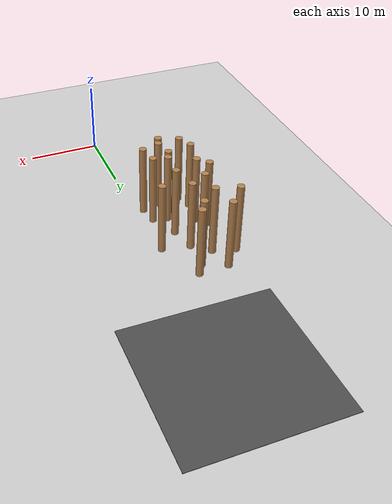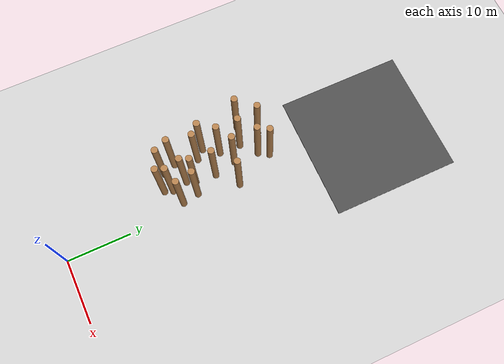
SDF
<sdf version="1.6">
 <world name="default">
  <model name="ground_plane">
   <static>1</static>
   <link name="link">
    <collision name="collision">
     <geometry><plane><normal>0 0 1</normal><size>100 100</size></plane></geometry>
     <surface><friction><ode><mu>100</mu><mu2>50</mu2></ode></friction></surface>
    </collision>
    <visual name="visual">
     <cast_shadows>0</cast_shadows>
     <geometry><plane><normal>0 0 1</normal><size>100 100</size></plane></geometry>
     <material>
      <script><uri>file://media/materials/scripts/gazebo.material</uri><name>Gazebo/Grey</name></script>
     </material>
    </visual>
   </link>
  </model>
  <model name="test_1">
   <link name="link_0_clone_0_clone_5_clone_12_clone_4_clone_10">
    <pose>-2.21925 7.76343 0.043478 0 -0 9e-06</pose>
    <inertial>
     <mass>1000</mass>
     <inertia><ixx>0.145833</ixx><ixy>0</ixy><ixz>0</ixz><iyy>0.145833</iyy><iyz>0</iyz><izz>0.125</izz></inertia>
    </inertial>
    <visual name="visual">
     <pose>0 0 4.5 0 -0 0</pose>
     <geometry><cylinder><radius>0.5</radius><length>10</length></cylinder></geometry>
     <material>
      <lighting>1</lighting>
      <script><uri>file://media/materials/scripts/gazebo.material</uri><name>Gazebo/WoodFloor</name></script>
      <ambient>0.3 0.3 0.3 1</ambient>
      <diffuse>0.7 0.7 0.7 1</diffuse>
      <specular>0.01 0.01 0.01 1</specular>
      <emissive>0 0 0 1</emissive>
      <shader type="vertex"><normal_map>__default__</normal_map></shader>
     </material>
    </visual>
    <collision name="collision">
     <pose>0 0 4.5 0 -0 0</pose>
     <geometry><cylinder><radius>0.5</radius><length>10</length></cylinder></geometry>
     <surface>
      <friction>
       <ode><mu>1</mu><mu2>1</mu2><fdir1>0 0 0</fdir1><slip1>0</slip1><slip2>0</slip2></ode>
       <torsional>
        <coefficient>1</coefficient>
        <patch_radius>0</patch_radius>
        <surface_radius>0</surface_radius>
        <use_patch_radius>1</use_patch_radius>
        <ode><slip>0</slip></ode>
       </torsional>
      </friction>
      <bounce><restitution_coefficient>0</restitution_coefficient><threshold>1e+06</threshold></bounce>
      <contact>
       <collide_without_contact>0</collide_without_contact>
       <collide_without_contact_bitmask>1</collide_without_contact_bitmask>
       <collide_bitmask>1</collide_bitmask>
       <ode>
        <soft_cfm>0</soft_cfm>
        <soft_erp>0.2</soft_erp>
        <kp>1e+13</kp>
        <kd>1</kd>
        <max_vel>0.01</max_vel>
        <min_depth>0</min_depth>
       </ode>
       <bullet>
        <split_impulse>1</split_impulse>
        <split_impulse_penetration_threshold>-0.01</split_impulse_penetration_threshold>
        <soft_cfm>0</soft_cfm>
        <soft_erp>0.2</soft_erp>
        <kp>1e+13</kp>
        <kd>1</kd>
       </bullet>
      </contact>
     </surface>
    </collision>
   </link>
   <link name="link_0_clone_0_clone_5_clone_12_clone_4_clone_11">
    <pose>-0.282355 7.32581 0.043478 0 -0 9e-06</pose>
    <inertial>
     <mass>1000</mass>
     <inertia><ixx>0.145833</ixx><ixy>0</ixy><ixz>0</ixz><iyy>0.145833</iyy><iyz>0</iyz><izz>0.125</izz></inertia>
    </inertial>
    <visual name="visual">
     <pose>0 0 4.5 0 -0 0</pose>
     <geometry><cylinder><radius>0.5</radius><length>10</length></cylinder></geometry>
     <material>
      <lighting>1</lighting>
      <script><uri>file://media/materials/scripts/gazebo.material</uri><name>Gazebo/WoodFloor</name></script>
      <ambient>0.3 0.3 0.3 1</ambient>
      <diffuse>0.7 0.7 0.7 1</diffuse>
      <specular>0.01 0.01 0.01 1</specular>
      <emissive>0 0 0 1</emissive>
      <shader type="vertex"><normal_map>__default__</normal_map></shader>
     </material>
    </visual>
    <collision name="collision">
     <pose>0 0 4.5 0 -0 0</pose>
     <geometry><cylinder><radius>0.5</radius><length>10</length></cylinder></geometry>
     <surface>
      <friction>
       <ode><mu>1</mu><mu2>1</mu2><fdir1>0 0 0</fdir1><slip1>0</slip1><slip2>0</slip2></ode>
       <torsional>
        <coefficient>1</coefficient>
        <patch_radius>0</patch_radius>
        <surface_radius>0</surface_radius>
        <use_patch_radius>1</use_patch_radius>
        <ode><slip>0</slip></ode>
       </torsional>
      </friction>
      <bounce><restitution_coefficient>0</restitution_coefficient><threshold>1e+06</threshold></bounce>
      <contact>
       <collide_without_contact>0</collide_without_contact>
       <collide_without_contact_bitmask>1</collide_without_contact_bitmask>
       <collide_bitmask>1</collide_bitmask>
       <ode>
        <soft_cfm>0</soft_cfm>
        <soft_erp>0.2</soft_erp>
        <kp>1e+13</kp>
        <kd>1</kd>
        <max_vel>0.01</max_vel>
        <min_depth>0</min_depth>
       </ode>
       <bullet>
        <split_impulse>1</split_impulse>
        <split_impulse_penetration_threshold>-0.01</split_impulse_penetration_threshold>
        <soft_cfm>0</soft_cfm>
        <soft_erp>0.2</soft_erp>
        <kp>1e+13</kp>
        <kd>1</kd>
       </bullet>
      </contact>
     </surface>
    </collision>
   </link>
   <link name="link_0_clone_0_clone_5_clone_12_clone_4_clone_18">
    <pose>-2.00304 11.0058 0.043478 0 -0 9e-06</pose>
    <inertial>
     <mass>1000</mass>
     <inertia><ixx>0.145833</ixx><ixy>0</ixy><ixz>0</ixz><iyy>0.145833</iyy><iyz>0</iyz><izz>0.125</izz></inertia>
    </inertial>
    <visual name="visual">
     <pose>0 0 4.5 0 -0 0</pose>
     <geometry><cylinder><radius>0.5</radius><length>10</length></cylinder></geometry>
     <material>
      <lighting>1</lighting>
      <script><uri>file://media/materials/scripts/gazebo.material</uri><name>Gazebo/WoodFloor</name></script>
      <ambient>0.3 0.3 0.3 1</ambient>
      <diffuse>0.7 0.7 0.7 1</diffuse>
      <specular>0.01 0.01 0.01 1</specular>
      <emissive>0 0 0 1</emissive>
      <shader type="vertex"><normal_map>__default__</normal_map></shader>
     </material>
    </visual>
    <collision name="collision">
     <pose>0 0 4.5 0 -0 0</pose>
     <geometry><cylinder><radius>0.5</radius><length>10</length></cylinder></geometry>
     <surface>
      <friction>
       <ode><mu>1</mu><mu2>1</mu2><fdir1>0 0 0</fdir1><slip1>0</slip1><slip2>0</slip2></ode>
       <torsional>
        <coefficient>1</coefficient>
        <patch_radius>0</patch_radius>
        <surface_radius>0</surface_radius>
        <use_patch_radius>1</use_patch_radius>
        <ode><slip>0</slip></ode>
       </torsional>
      </friction>
      <bounce><restitution_coefficient>0</restitution_coefficient><threshold>1e+06</threshold></bounce>
      <contact>
       <collide_without_contact>0</collide_without_contact>
       <collide_without_contact_bitmask>1</collide_without_contact_bitmask>
       <collide_bitmask>1</collide_bitmask>
       <ode>
        <soft_cfm>0</soft_cfm>
        <soft_erp>0.2</soft_erp>
        <kp>1e+13</kp>
        <kd>1</kd>
        <max_vel>0.01</max_vel>
        <min_depth>0</min_depth>
       </ode>
       <bullet>
        <split_impulse>1</split_impulse>
        <split_impulse_penetration_threshold>-0.01</split_impulse_penetration_threshold>
        <soft_cfm>0</soft_cfm>
        <soft_erp>0.2</soft_erp>
        <kp>1e+13</kp>
        <kd>1</kd>
       </bullet>
      </contact>
     </surface>
    </collision>
   </link>
   <link name="link_0_clone_0_clone_5_clone_12_clone_4_clone_19">
    <pose>-5.48575 9.45539 0.043478 0 -0 9e-06</pose>
    <inertial>
     <mass>1000</mass>
     <inertia><ixx>0.145833</ixx><ixy>0</ixy><ixz>0</ixz><iyy>0.145833</iyy><iyz>0</iyz><izz>0.125</izz></inertia>
    </inertial>
    <visual name="visual">
     <pose>0 0 4.5 0 -0 0</pose>
     <geometry><cylinder><radius>0.5</radius><length>10</length></cylinder></geometry>
     <material>
      <lighting>1</lighting>
      <script><uri>file://media/materials/scripts/gazebo.material</uri><name>Gazebo/WoodFloor</name></script>
      <ambient>0.3 0.3 0.3 1</ambient>
      <diffuse>0.7 0.7 0.7 1</diffuse>
      <specular>0.01 0.01 0.01 1</specular>
      <emissive>0 0 0 1</emissive>
      <shader type="vertex"><normal_map>__default__</normal_map></shader>
     </material>
    </visual>
    <collision name="collision">
     <pose>0 0 4.5 0 -0 0</pose>
     <geometry><cylinder><radius>0.5</radius><length>10</length></cylinder></geometry>
     <surface>
      <friction>
       <ode><mu>1</mu><mu2>1</mu2><fdir1>0 0 0</fdir1><slip1>0</slip1><slip2>0</slip2></ode>
       <torsional>
        <coefficient>1</coefficient>
        <patch_radius>0</patch_radius>
        <surface_radius>0</surface_radius>
        <use_patch_radius>1</use_patch_radius>
        <ode><slip>0</slip></ode>
       </torsional>
      </friction>
      <bounce><restitution_coefficient>0</restitution_coefficient><threshold>1e+06</threshold></bounce>
      <contact>
       <collide_without_contact>0</collide_without_contact>
       <collide_without_contact_bitmask>1</collide_without_contact_bitmask>
       <collide_bitmask>1</collide_bitmask>
       <ode>
        <soft_cfm>0</soft_cfm>
        <soft_erp>0.2</soft_erp>
        <kp>1e+13</kp>
        <kd>1</kd>
        <max_vel>0.01</max_vel>
        <min_depth>0</min_depth>
       </ode>
       <bullet>
        <split_impulse>1</split_impulse>
        <split_impulse_penetration_threshold>-0.01</split_impulse_penetration_threshold>
        <soft_cfm>0</soft_cfm>
        <soft_erp>0.2</soft_erp>
        <kp>1e+13</kp>
        <kd>1</kd>
       </bullet>
      </contact>
     </surface>
    </collision>
   </link>
   <link name="link_0_clone_0_clone_5_clone_12_clone_4_clone_21">
    <pose>0.162406 4.77836 0.043478 0 -0 9e-06</pose>
    <inertial>
     <mass>1000</mass>
     <inertia><ixx>0.145833</ixx><ixy>0</ixy><ixz>0</ixz><iyy>0.145833</iyy><iyz>0</iyz><izz>0.125</izz></inertia>
    </inertial>
    <visual name="visual">
     <pose>0 0 4.5 0 -0 0</pose>
     <geometry><cylinder><radius>0.5</radius><length>10</length></cylinder></geometry>
     <material>
      <lighting>1</lighting>
      <script><uri>file://media/materials/scripts/gazebo.material</uri><name>Gazebo/WoodFloor</name></script>
      <ambient>0.3 0.3 0.3 1</ambient>
      <diffuse>0.7 0.7 0.7 1</diffuse>
      <specular>0.01 0.01 0.01 1</specular>
      <emissive>0 0 0 1</emissive>
      <shader type="vertex"><normal_map>__default__</normal_map></shader>
     </material>
    </visual>
    <collision name="collision">
     <pose>0 0 4.5 0 -0 0</pose>
     <geometry><cylinder><radius>0.5</radius><length>10</length></cylinder></geometry>
     <surface>
      <friction>
       <ode><mu>1</mu><mu2>1</mu2><fdir1>0 0 0</fdir1><slip1>0</slip1><slip2>0</slip2></ode>
       <torsional>
        <coefficient>1</coefficient>
        <patch_radius>0</patch_radius>
        <surface_radius>0</surface_radius>
        <use_patch_radius>1</use_patch_radius>
        <ode><slip>0</slip></ode>
       </torsional>
      </friction>
      <bounce><restitution_coefficient>0</restitution_coefficient><threshold>1e+06</threshold></bounce>
      <contact>
       <collide_without_contact>0</collide_without_contact>
       <collide_without_contact_bitmask>1</collide_without_contact_bitmask>
       <collide_bitmask>1</collide_bitmask>
       <ode>
        <soft_cfm>0</soft_cfm>
        <soft_erp>0.2</soft_erp>
        <kp>1e+13</kp>
        <kd>1</kd>
        <max_vel>0.01</max_vel>
        <min_depth>0</min_depth>
       </ode>
       <bullet>
        <split_impulse>1</split_impulse>
        <split_impulse_penetration_threshold>-0.01</split_impulse_penetration_threshold>
        <soft_cfm>0</soft_cfm>
        <soft_erp>0.2</soft_erp>
        <kp>1e+13</kp>
        <kd>1</kd>
       </bullet>
      </contact>
     </surface>
    </collision>
   </link>
   <link name="link_0_clone_0_clone_5_clone_12_clone_4_clone_25">
    <pose>-5.0924 13.0265 0.043478 0 -0 9e-06</pose>
    <inertial>
     <mass>1000</mass>
     <inertia><ixx>0.145833</ixx><ixy>0</ixy><ixz>0</ixz><iyy>0.145833</iyy><iyz>0</iyz><izz>0.125</izz></inertia>
    </inertial>
    <visual name="visual">
     <pose>0 0 4.5 0 -0 0</pose>
     <geometry><cylinder><radius>0.5</radius><length>10</length></cylinder></geometry>
     <material>
      <lighting>1</lighting>
      <script><uri>file://media/materials/scripts/gazebo.material</uri><name>Gazebo/WoodFloor</name></script>
      <ambient>0.3 0.3 0.3 1</ambient>
      <diffuse>0.7 0.7 0.7 1</diffuse>
      <specular>0.01 0.01 0.01 1</specular>
      <emissive>0 0 0 1</emissive>
      <shader type="vertex"><normal_map>__default__</normal_map></shader>
     </material>
    </visual>
    <collision name="collision">
     <pose>0 0 4.5 0 -0 0</pose>
     <geometry><cylinder><radius>0.5</radius><length>10</length></cylinder></geometry>
     <surface>
      <friction>
       <ode><mu>1</mu><mu2>1</mu2><fdir1>0 0 0</fdir1><slip1>0</slip1><slip2>0</slip2></ode>
       <torsional>
        <coefficient>1</coefficient>
        <patch_radius>0</patch_radius>
        <surface_radius>0</surface_radius>
        <use_patch_radius>1</use_patch_radius>
        <ode><slip>0</slip></ode>
       </torsional>
      </friction>
      <bounce><restitution_coefficient>0</restitution_coefficient><threshold>1e+06</threshold></bounce>
      <contact>
       <collide_without_contact>0</collide_without_contact>
       <collide_without_contact_bitmask>1</collide_without_contact_bitmask>
       <collide_bitmask>1</collide_bitmask>
       <ode>
        <soft_cfm>0</soft_cfm>
        <soft_erp>0.2</soft_erp>
        <kp>1e+13</kp>
        <kd>1</kd>
        <max_vel>0.01</max_vel>
        <min_depth>0</min_depth>
       </ode>
       <bullet>
        <split_impulse>1</split_impulse>
        <split_impulse_penetration_threshold>-0.01</split_impulse_penetration_threshold>
        <soft_cfm>0</soft_cfm>
        <soft_erp>0.2</soft_erp>
        <kp>1e+13</kp>
        <kd>1</kd>
       </bullet>
      </contact>
     </surface>
    </collision>
   </link>
   <link name="link_0_clone_0_clone_5_clone_12_clone_4_clone_26">
    <pose>-2.77132 14.4659 0.043478 0 -0 9e-06</pose>
    <inertial>
     <mass>1000</mass>
     <inertia><ixx>0.145833</ixx><ixy>0</ixy><ixz>0</ixz><iyy>0.145833</iyy><iyz>0</iyz><izz>0.125</izz></inertia>
    </inertial>
    <visual name="visual">
     <pose>0 0 4.5 0 -0 0</pose>
     <geometry><cylinder><radius>0.5</radius><length>10</length></cylinder></geometry>
     <material>
      <lighting>1</lighting>
      <script><uri>file://media/materials/scripts/gazebo.material</uri><name>Gazebo/WoodFloor</name></script>
      <ambient>0.3 0.3 0.3 1</ambient>
      <diffuse>0.7 0.7 0.7 1</diffuse>
      <specular>0.01 0.01 0.01 1</specular>
      <emissive>0 0 0 1</emissive>
      <shader type="vertex"><normal_map>__default__</normal_map></shader>
     </material>
    </visual>
    <collision name="collision">
     <pose>0 0 4.5 0 -0 0</pose>
     <geometry><cylinder><radius>0.5</radius><length>10</length></cylinder></geometry>
     <surface>
      <friction>
       <ode><mu>1</mu><mu2>1</mu2><fdir1>0 0 0</fdir1><slip1>0</slip1><slip2>0</slip2></ode>
       <torsional>
        <coefficient>1</coefficient>
        <patch_radius>0</patch_radius>
        <surface_radius>0</surface_radius>
        <use_patch_radius>1</use_patch_radius>
        <ode><slip>0</slip></ode>
       </torsional>
      </friction>
      <bounce><restitution_coefficient>0</restitution_coefficient><threshold>1e+06</threshold></bounce>
      <contact>
       <collide_without_contact>0</collide_without_contact>
       <collide_without_contact_bitmask>1</collide_without_contact_bitmask>
       <collide_bitmask>1</collide_bitmask>
       <ode>
        <soft_cfm>0</soft_cfm>
        <soft_erp>0.2</soft_erp>
        <kp>1e+13</kp>
        <kd>1</kd>
        <max_vel>0.01</max_vel>
        <min_depth>0</min_depth>
       </ode>
       <bullet>
        <split_impulse>1</split_impulse>
        <split_impulse_penetration_threshold>-0.01</split_impulse_penetration_threshold>
        <soft_cfm>0</soft_cfm>
        <soft_erp>0.2</soft_erp>
        <kp>1e+13</kp>
        <kd>1</kd>
       </bullet>
      </contact>
     </surface>
    </collision>
   </link>
   <link name="link_0_clone_0_clone_5_clone_12_clone_4_clone_27">
    <pose>-2.60779 18.3839 0.043478 0 -0 9e-06</pose>
    <inertial>
     <mass>1000</mass>
     <inertia><ixx>0.145833</ixx><ixy>0</ixy><ixz>0</ixz><iyy>0.145833</iyy><iyz>0</iyz><izz>0.125</izz></inertia>
    </inertial>
    <visual name="visual">
     <pose>0 0 4.5 0 -0 0</pose>
     <geometry><cylinder><radius>0.5</radius><length>10</length></cylinder></geometry>
     <material>
      <lighting>1</lighting>
      <script><uri>file://media/materials/scripts/gazebo.material</uri><name>Gazebo/WoodFloor</name></script>
      <ambient>0.3 0.3 0.3 1</ambient>
      <diffuse>0.7 0.7 0.7 1</diffuse>
      <specular>0.01 0.01 0.01 1</specular>
      <emissive>0 0 0 1</emissive>
      <shader type="vertex"><normal_map>__default__</normal_map></shader>
     </material>
    </visual>
    <collision name="collision">
     <pose>0 0 4.5 0 -0 0</pose>
     <geometry><cylinder><radius>0.5</radius><length>10</length></cylinder></geometry>
     <surface>
      <friction>
       <ode><mu>1</mu><mu2>1</mu2><fdir1>0 0 0</fdir1><slip1>0</slip1><slip2>0</slip2></ode>
       <torsional>
        <coefficient>1</coefficient>
        <patch_radius>0</patch_radius>
        <surface_radius>0</surface_radius>
        <use_patch_radius>1</use_patch_radius>
        <ode><slip>0</slip></ode>
       </torsional>
      </friction>
      <bounce><restitution_coefficient>0</restitution_coefficient><threshold>1e+06</threshold></bounce>
      <contact>
       <collide_without_contact>0</collide_without_contact>
       <collide_without_contact_bitmask>1</collide_without_contact_bitmask>
       <collide_bitmask>1</collide_bitmask>
       <ode>
        <soft_cfm>0</soft_cfm>
        <soft_erp>0.2</soft_erp>
        <kp>1e+13</kp>
        <kd>1</kd>
        <max_vel>0.01</max_vel>
        <min_depth>0</min_depth>
       </ode>
       <bullet>
        <split_impulse>1</split_impulse>
        <split_impulse_penetration_threshold>-0.01</split_impulse_penetration_threshold>
        <soft_cfm>0</soft_cfm>
        <soft_erp>0.2</soft_erp>
        <kp>1e+13</kp>
        <kd>1</kd>
       </bullet>
      </contact>
     </surface>
    </collision>
   </link>
   <link name="link_0_clone_0_clone_5_clone_12_clone_4_clone_28">
    <pose>-5.72612 19.7532 0.043478 0 -0 9e-06</pose>
    <inertial>
     <mass>1000</mass>
     <inertia><ixx>0.145833</ixx><ixy>0</ixy><ixz>0</ixz><iyy>0.145833</iyy><iyz>0</iyz><izz>0.125</izz></inertia>
    </inertial>
    <visual name="visual">
     <pose>0 0 4.5 0 -0 0</pose>
     <geometry><cylinder><radius>0.5</radius><length>10</length></cylinder></geometry>
     <material>
      <lighting>1</lighting>
      <script><uri>file://media/materials/scripts/gazebo.material</uri><name>Gazebo/WoodFloor</name></script>
      <ambient>0.3 0.3 0.3 1</ambient>
      <diffuse>0.7 0.7 0.7 1</diffuse>
      <specular>0.01 0.01 0.01 1</specular>
      <emissive>0 0 0 1</emissive>
      <shader type="vertex"><normal_map>__default__</normal_map></shader>
     </material>
    </visual>
    <collision name="collision">
     <pose>0 0 4.5 0 -0 0</pose>
     <geometry><cylinder><radius>0.5</radius><length>10</length></cylinder></geometry>
     <surface>
      <friction>
       <ode><mu>1</mu><mu2>1</mu2><fdir1>0 0 0</fdir1><slip1>0</slip1><slip2>0</slip2></ode>
       <torsional>
        <coefficient>1</coefficient>
        <patch_radius>0</patch_radius>
        <surface_radius>0</surface_radius>
        <use_patch_radius>1</use_patch_radius>
        <ode><slip>0</slip></ode>
       </torsional>
      </friction>
      <bounce><restitution_coefficient>0</restitution_coefficient><threshold>1e+06</threshold></bounce>
      <contact>
       <collide_without_contact>0</collide_without_contact>
       <collide_without_contact_bitmask>1</collide_without_contact_bitmask>
       <collide_bitmask>1</collide_bitmask>
       <ode>
        <soft_cfm>0</soft_cfm>
        <soft_erp>0.2</soft_erp>
        <kp>1e+13</kp>
        <kd>1</kd>
        <max_vel>0.01</max_vel>
        <min_depth>0</min_depth>
       </ode>
       <bullet>
        <split_impulse>1</split_impulse>
        <split_impulse_penetration_threshold>-0.01</split_impulse_penetration_threshold>
        <soft_cfm>0</soft_cfm>
        <soft_erp>0.2</soft_erp>
        <kp>1e+13</kp>
        <kd>1</kd>
       </bullet>
      </contact>
     </surface>
    </collision>
   </link>
   <link name="link_0_clone_0_clone_5_clone_12_clone_4_clone_29">
    <pose>-8.01682 17.1783 0.043478 0 -0 9e-06</pose>
    <inertial>
     <mass>1000</mass>
     <inertia><ixx>0.145833</ixx><ixy>0</ixy><ixz>0</ixz><iyy>0.145833</iyy><iyz>0</iyz><izz>0.125</izz></inertia>
    </inertial>
    <visual name="visual">
     <pose>0 0 4.5 0 -0 0</pose>
     <geometry><cylinder><radius>0.5</radius><length>10</length></cylinder></geometry>
     <material>
      <lighting>1</lighting>
      <script><uri>file://media/materials/scripts/gazebo.material</uri><name>Gazebo/WoodFloor</name></script>
      <ambient>0.3 0.3 0.3 1</ambient>
      <diffuse>0.7 0.7 0.7 1</diffuse>
      <specular>0.01 0.01 0.01 1</specular>
      <emissive>0 0 0 1</emissive>
      <shader type="vertex"><normal_map>__default__</normal_map></shader>
     </material>
    </visual>
    <collision name="collision">
     <pose>0 0 4.5 0 -0 0</pose>
     <geometry><cylinder><radius>0.5</radius><length>10</length></cylinder></geometry>
     <surface>
      <friction>
       <ode><mu>1</mu><mu2>1</mu2><fdir1>0 0 0</fdir1><slip1>0</slip1><slip2>0</slip2></ode>
       <torsional>
        <coefficient>1</coefficient>
        <patch_radius>0</patch_radius>
        <surface_radius>0</surface_radius>
        <use_patch_radius>1</use_patch_radius>
        <ode><slip>0</slip></ode>
       </torsional>
      </friction>
      <bounce><restitution_coefficient>0</restitution_coefficient><threshold>1e+06</threshold></bounce>
      <contact>
       <collide_without_contact>0</collide_without_contact>
       <collide_without_contact_bitmask>1</collide_without_contact_bitmask>
       <collide_bitmask>1</collide_bitmask>
       <ode>
        <soft_cfm>0</soft_cfm>
        <soft_erp>0.2</soft_erp>
        <kp>1e+13</kp>
        <kd>1</kd>
        <max_vel>0.01</max_vel>
        <min_depth>0</min_depth>
       </ode>
       <bullet>
        <split_impulse>1</split_impulse>
        <split_impulse_penetration_threshold>-0.01</split_impulse_penetration_threshold>
        <soft_cfm>0</soft_cfm>
        <soft_erp>0.2</soft_erp>
        <kp>1e+13</kp>
        <kd>1</kd>
       </bullet>
      </contact>
     </surface>
    </collision>
   </link>
   <link name="link_0_clone_0_clone_5_clone_12_clone_4_clone_32">
    <pose>-1.64324 19.9305 0.043478 0 -0 9e-06</pose>
    <inertial>
     <mass>1000</mass>
     <inertia><ixx>0.145833</ixx><ixy>0</ixy><ixz>0</ixz><iyy>0.145833</iyy><iyz>0</iyz><izz>0.125</izz></inertia>
    </inertial>
    <visual name="visual">
     <pose>0 0 4.5 0 -0 0</pose>
     <geometry><cylinder><radius>0.5</radius><length>10</length></cylinder></geometry>
     <material>
      <lighting>1</lighting>
      <script><uri>file://media/materials/scripts/gazebo.material</uri><name>Gazebo/WoodFloor</name></script>
      <ambient>0.3 0.3 0.3 1</ambient>
      <diffuse>0.7 0.7 0.7 1</diffuse>
      <specular>0.01 0.01 0.01 1</specular>
      <emissive>0 0 0 1</emissive>
      <shader type="vertex"><normal_map>__default__</normal_map></shader>
     </material>
    </visual>
    <collision name="collision">
     <pose>0 0 4.5 0 -0 0</pose>
     <geometry><cylinder><radius>0.5</radius><length>10</length></cylinder></geometry>
     <surface>
      <friction>
       <ode><mu>1</mu><mu2>1</mu2><fdir1>0 0 0</fdir1><slip1>0</slip1><slip2>0</slip2></ode>
       <torsional>
        <coefficient>1</coefficient>
        <patch_radius>0</patch_radius>
        <surface_radius>0</surface_radius>
        <use_patch_radius>1</use_patch_radius>
        <ode><slip>0</slip></ode>
       </torsional>
      </friction>
      <bounce><restitution_coefficient>0</restitution_coefficient><threshold>1e+06</threshold></bounce>
      <contact>
       <collide_without_contact>0</collide_without_contact>
       <collide_without_contact_bitmask>1</collide_without_contact_bitmask>
       <collide_bitmask>1</collide_bitmask>
       <ode>
        <soft_cfm>0</soft_cfm>
        <soft_erp>0.2</soft_erp>
        <kp>1e+13</kp>
        <kd>1</kd>
        <max_vel>0.01</max_vel>
        <min_depth>0</min_depth>
       </ode>
       <bullet>
        <split_impulse>1</split_impulse>
        <split_impulse_penetration_threshold>-0.01</split_impulse_penetration_threshold>
        <soft_cfm>0</soft_cfm>
        <soft_erp>0.2</soft_erp>
        <kp>1e+13</kp>
        <kd>1</kd>
       </bullet>
      </contact>
     </surface>
    </collision>
   </link>
   <link name="link_0_clone_0_clone_5_clone_12_clone_4_clone_37">
    <pose>0.956003 13.7187 0.043478 0 -0 9e-06</pose>
    <inertial>
     <mass>1000</mass>
     <inertia><ixx>0.145833</ixx><ixy>0</ixy><ixz>0</ixz><iyy>0.145833</iyy><iyz>0</iyz><izz>0.125</izz></inertia>
    </inertial>
    <visual name="visual">
     <pose>0 0 4.5 0 -0 0</pose>
     <geometry><cylinder><radius>0.5</radius><length>10</length></cylinder></geometry>
     <material>
      <lighting>1</lighting>
      <script><uri>file://media/materials/scripts/gazebo.material</uri><name>Gazebo/WoodFloor</name></script>
      <ambient>0.3 0.3 0.3 1</ambient>
      <diffuse>0.7 0.7 0.7 1</diffuse>
      <specular>0.01 0.01 0.01 1</specular>
      <emissive>0 0 0 1</emissive>
      <shader type="vertex"><normal_map>__default__</normal_map></shader>
     </material>
    </visual>
    <collision name="collision">
     <pose>0 0 4.5 0 -0 0</pose>
     <geometry><cylinder><radius>0.5</radius><length>10</length></cylinder></geometry>
     <surface>
      <friction>
       <ode><mu>1</mu><mu2>1</mu2><fdir1>0 0 0</fdir1><slip1>0</slip1><slip2>0</slip2></ode>
       <torsional>
        <coefficient>1</coefficient>
        <patch_radius>0</patch_radius>
        <surface_radius>0</surface_radius>
        <use_patch_radius>1</use_patch_radius>
        <ode><slip>0</slip></ode>
       </torsional>
      </friction>
      <bounce><restitution_coefficient>0</restitution_coefficient><threshold>1e+06</threshold></bounce>
      <contact>
       <collide_without_contact>0</collide_without_contact>
       <collide_without_contact_bitmask>1</collide_without_contact_bitmask>
       <collide_bitmask>1</collide_bitmask>
       <ode>
        <soft_cfm>0</soft_cfm>
        <soft_erp>0.2</soft_erp>
        <kp>1e+13</kp>
        <kd>1</kd>
        <max_vel>0.01</max_vel>
        <min_depth>0</min_depth>
       </ode>
       <bullet>
        <split_impulse>1</split_impulse>
        <split_impulse_penetration_threshold>-0.01</split_impulse_penetration_threshold>
        <soft_cfm>0</soft_cfm>
        <soft_erp>0.2</soft_erp>
        <kp>1e+13</kp>
        <kd>1</kd>
       </bullet>
      </contact>
     </surface>
    </collision>
   </link>
   <link name="link_0_clone_0_clone_5_clone_12_clone_4_clone_5">
    <pose>-2.73324 2.82049 0.043478 0 -0 9e-06</pose>
    <inertial>
     <mass>1000</mass>
     <inertia><ixx>0.145833</ixx><ixy>0</ixy><ixz>0</ixz><iyy>0.145833</iyy><iyz>0</iyz><izz>0.125</izz></inertia>
    </inertial>
    <visual name="visual">
     <pose>0 0 4.5 0 -0 0</pose>
     <geometry><cylinder><radius>0.5</radius><length>10</length></cylinder></geometry>
     <material>
      <lighting>1</lighting>
      <script><uri>file://media/materials/scripts/gazebo.material</uri><name>Gazebo/WoodFloor</name></script>
      <ambient>0.3 0.3 0.3 1</ambient>
      <diffuse>0.7 0.7 0.7 1</diffuse>
      <specular>0.01 0.01 0.01 1</specular>
      <emissive>0 0 0 1</emissive>
      <shader type="vertex"><normal_map>__default__</normal_map></shader>
     </material>
    </visual>
    <collision name="collision">
     <pose>0 0 4.5 0 -0 0</pose>
     <geometry><cylinder><radius>0.5</radius><length>10</length></cylinder></geometry>
     <surface>
      <friction>
       <ode><mu>1</mu><mu2>1</mu2><fdir1>0 0 0</fdir1><slip1>0</slip1><slip2>0</slip2></ode>
       <torsional>
        <coefficient>1</coefficient>
        <patch_radius>0</patch_radius>
        <surface_radius>0</surface_radius>
        <use_patch_radius>1</use_patch_radius>
        <ode><slip>0</slip></ode>
       </torsional>
      </friction>
      <bounce><restitution_coefficient>0</restitution_coefficient><threshold>1e+06</threshold></bounce>
      <contact>
       <collide_without_contact>0</collide_without_contact>
       <collide_without_contact_bitmask>1</collide_without_contact_bitmask>
       <collide_bitmask>1</collide_bitmask>
       <ode>
        <soft_cfm>0</soft_cfm>
        <soft_erp>0.2</soft_erp>
        <kp>1e+13</kp>
        <kd>1</kd>
        <max_vel>0.01</max_vel>
        <min_depth>0</min_depth>
       </ode>
       <bullet>
        <split_impulse>1</split_impulse>
        <split_impulse_penetration_threshold>-0.01</split_impulse_penetration_threshold>
        <soft_cfm>0</soft_cfm>
        <soft_erp>0.2</soft_erp>
        <kp>1e+13</kp>
        <kd>1</kd>
       </bullet>
      </contact>
     </surface>
    </collision>
   </link>
   <link name="link_0_clone_0_clone_5_clone_12_clone_4_clone_6">
    <pose>-2.28057 4.08036 0.043478 0 -0 9e-06</pose>
    <inertial>
     <mass>1000</mass>
     <inertia><ixx>0.145833</ixx><ixy>0</ixy><ixz>0</ixz><iyy>0.145833</iyy><iyz>0</iyz><izz>0.125</izz></inertia>
    </inertial>
    <visual name="visual">
     <pose>0 0 4.5 0 -0 0</pose>
     <geometry><cylinder><radius>0.5</radius><length>10</length></cylinder></geometry>
     <material>
      <lighting>1</lighting>
      <script><uri>file://media/materials/scripts/gazebo.material</uri><name>Gazebo/WoodFloor</name></script>
      <ambient>0.3 0.3 0.3 1</ambient>
      <diffuse>0.7 0.7 0.7 1</diffuse>
      <specular>0.01 0.01 0.01 1</specular>
      <emissive>0 0 0 1</emissive>
      <shader type="vertex"><normal_map>__default__</normal_map></shader>
     </material>
    </visual>
    <collision name="collision">
     <pose>0 0 4.5 0 -0 0</pose>
     <geometry><cylinder><radius>0.5</radius><length>10</length></cylinder></geometry>
     <surface>
      <friction>
       <ode><mu>1</mu><mu2>1</mu2><fdir1>0 0 0</fdir1><slip1>0</slip1><slip2>0</slip2></ode>
       <torsional>
        <coefficient>1</coefficient>
        <patch_radius>0</patch_radius>
        <surface_radius>0</surface_radius>
        <use_patch_radius>1</use_patch_radius>
        <ode><slip>0</slip></ode>
       </torsional>
      </friction>
      <bounce><restitution_coefficient>0</restitution_coefficient><threshold>1e+06</threshold></bounce>
      <contact>
       <collide_without_contact>0</collide_without_contact>
       <collide_without_contact_bitmask>1</collide_without_contact_bitmask>
       <collide_bitmask>1</collide_bitmask>
       <ode>
        <soft_cfm>0</soft_cfm>
        <soft_erp>0.2</soft_erp>
        <kp>1e+13</kp>
        <kd>1</kd>
        <max_vel>0.01</max_vel>
        <min_depth>0</min_depth>
       </ode>
       <bullet>
        <split_impulse>1</split_impulse>
        <split_impulse_penetration_threshold>-0.01</split_impulse_penetration_threshold>
        <soft_cfm>0</soft_cfm>
        <soft_erp>0.2</soft_erp>
        <kp>1e+13</kp>
        <kd>1</kd>
       </bullet>
      </contact>
     </surface>
    </collision>
   </link>
   <link name="link_0_clone_0_clone_5_clone_12_clone_4_clone_7">
    <pose>-2.79854 6.44975 0.043478 0 -0 9e-06</pose>
    <inertial>
     <mass>1000</mass>
     <inertia><ixx>0.145833</ixx><ixy>0</ixy><ixz>0</ixz><iyy>0.145833</iyy><iyz>0</iyz><izz>0.125</izz></inertia>
    </inertial>
    <visual name="visual">
     <pose>0 0 4.5 0 -0 0</pose>
     <geometry><cylinder><radius>0.5</radius><length>10</length></cylinder></geometry>
     <material>
      <lighting>1</lighting>
      <script><uri>file://media/materials/scripts/gazebo.material</uri><name>Gazebo/WoodFloor</name></script>
      <ambient>0.3 0.3 0.3 1</ambient>
      <diffuse>0.7 0.7 0.7 1</diffuse>
      <specular>0.01 0.01 0.01 1</specular>
      <emissive>0 0 0 1</emissive>
      <shader type="vertex"><normal_map>__default__</normal_map></shader>
     </material>
    </visual>
    <collision name="collision">
     <pose>0 0 4.5 0 -0 0</pose>
     <geometry><cylinder><radius>0.5</radius><length>10</length></cylinder></geometry>
     <surface>
      <friction>
       <ode><mu>1</mu><mu2>1</mu2><fdir1>0 0 0</fdir1><slip1>0</slip1><slip2>0</slip2></ode>
       <torsional>
        <coefficient>1</coefficient>
        <patch_radius>0</patch_radius>
        <surface_radius>0</surface_radius>
        <use_patch_radius>1</use_patch_radius>
        <ode><slip>0</slip></ode>
       </torsional>
      </friction>
      <bounce><restitution_coefficient>0</restitution_coefficient><threshold>1e+06</threshold></bounce>
      <contact>
       <collide_without_contact>0</collide_without_contact>
       <collide_without_contact_bitmask>1</collide_without_contact_bitmask>
       <collide_bitmask>1</collide_bitmask>
       <ode>
        <soft_cfm>0</soft_cfm>
        <soft_erp>0.2</soft_erp>
        <kp>1e+13</kp>
        <kd>1</kd>
        <max_vel>0.01</max_vel>
        <min_depth>0</min_depth>
       </ode>
       <bullet>
        <split_impulse>1</split_impulse>
        <split_impulse_penetration_threshold>-0.01</split_impulse_penetration_threshold>
        <soft_cfm>0</soft_cfm>
        <soft_erp>0.2</soft_erp>
        <kp>1e+13</kp>
        <kd>1</kd>
       </bullet>
      </contact>
     </surface>
    </collision>
   </link>
   <link name="link_0_clone_0_clone_5_clone_12_clone_4_clone_8">
    <pose>-5.36694 3.8564 0.043478 0 -0 9e-06</pose>
    <inertial>
     <mass>1000</mass>
     <inertia><ixx>0.145833</ixx><ixy>0</ixy><ixz>0</ixz><iyy>0.145833</iyy><iyz>0</iyz><izz>0.125</izz></inertia>
    </inertial>
    <visual name="visual">
     <pose>0 0 4.5 0 -0 0</pose>
     <geometry><cylinder><radius>0.5</radius><length>10</length></cylinder></geometry>
     <material>
      <lighting>1</lighting>
      <script><uri>file://media/materials/scripts/gazebo.material</uri><name>Gazebo/WoodFloor</name></script>
      <ambient>0.3 0.3 0.3 1</ambient>
      <diffuse>0.7 0.7 0.7 1</diffuse>
      <specular>0.01 0.01 0.01 1</specular>
      <emissive>0 0 0 1</emissive>
      <shader type="vertex"><normal_map>__default__</normal_map></shader>
     </material>
    </visual>
    <collision name="collision">
     <pose>0 0 4.5 0 -0 0</pose>
     <geometry><cylinder><radius>0.5</radius><length>10</length></cylinder></geometry>
     <surface>
      <friction>
       <ode><mu>1</mu><mu2>1</mu2><fdir1>0 0 0</fdir1><slip1>0</slip1><slip2>0</slip2></ode>
       <torsional>
        <coefficient>1</coefficient>
        <patch_radius>0</patch_radius>
        <surface_radius>0</surface_radius>
        <use_patch_radius>1</use_patch_radius>
        <ode><slip>0</slip></ode>
       </torsional>
      </friction>
      <bounce><restitution_coefficient>0</restitution_coefficient><threshold>1e+06</threshold></bounce>
      <contact>
       <collide_without_contact>0</collide_without_contact>
       <collide_without_contact_bitmask>1</collide_without_contact_bitmask>
       <collide_bitmask>1</collide_bitmask>
       <ode>
        <soft_cfm>0</soft_cfm>
        <soft_erp>0.2</soft_erp>
        <kp>1e+13</kp>
        <kd>1</kd>
        <max_vel>0.01</max_vel>
        <min_depth>0</min_depth>
       </ode>
       <bullet>
        <split_impulse>1</split_impulse>
        <split_impulse_penetration_threshold>-0.01</split_impulse_penetration_threshold>
        <soft_cfm>0</soft_cfm>
        <soft_erp>0.2</soft_erp>
        <kp>1e+13</kp>
        <kd>1</kd>
       </bullet>
      </contact>
     </surface>
    </collision>
   </link>
   <link name="link_0_clone_0_clone_5_clone_19">
    <pose>-4.98555 16.3648 0.043478 0 -0 3e-06</pose>
    <inertial>
     <mass>1000</mass>
     <inertia><ixx>0.145833</ixx><ixy>0</ixy><ixz>0</ixz><iyy>0.145833</iyy><iyz>0</iyz><izz>0.125</izz></inertia>
    </inertial>
    <visual name="visual">
     <pose>0 0 4.5 0 -0 0</pose>
     <geometry><cylinder><radius>0.5</radius><length>10</length></cylinder></geometry>
     <material>
      <lighting>1</lighting>
      <script><uri>file://media/materials/scripts/gazebo.material</uri><name>Gazebo/WoodFloor</name></script>
      <ambient>0.3 0.3 0.3 1</ambient>
      <diffuse>0.7 0.7 0.7 1</diffuse>
      <specular>0.01 0.01 0.01 1</specular>
      <emissive>0 0 0 1</emissive>
      <shader type="vertex"><normal_map>__default__</normal_map></shader>
     </material>
    </visual>
    <collision name="collision">
     <pose>0 0 4.5 0 -0 0</pose>
     <geometry><cylinder><radius>0.5</radius><length>10</length></cylinder></geometry>
     <surface>
      <friction>
       <ode><mu>1</mu><mu2>1</mu2><fdir1>0 0 0</fdir1><slip1>0</slip1><slip2>0</slip2></ode>
       <torsional>
        <coefficient>1</coefficient>
        <patch_radius>0</patch_radius>
        <surface_radius>0</surface_radius>
        <use_patch_radius>1</use_patch_radius>
        <ode><slip>0</slip></ode>
       </torsional>
      </friction>
      <bounce><restitution_coefficient>0</restitution_coefficient><threshold>1e+06</threshold></bounce>
      <contact>
       <collide_without_contact>0</collide_without_contact>
       <collide_without_contact_bitmask>1</collide_without_contact_bitmask>
       <collide_bitmask>1</collide_bitmask>
       <ode>
        <soft_cfm>0</soft_cfm>
        <soft_erp>0.2</soft_erp>
        <kp>1e+13</kp>
        <kd>1</kd>
        <max_vel>0.01</max_vel>
        <min_depth>0</min_depth>
       </ode>
       <bullet>
        <split_impulse>1</split_impulse>
        <split_impulse_penetration_threshold>-0.01</split_impulse_penetration_threshold>
        <soft_cfm>0</soft_cfm>
        <soft_erp>0.2</soft_erp>
        <kp>1e+13</kp>
        <kd>1</kd>
       </bullet>
      </contact>
     </surface>
    </collision>
   </link>
   <link name="link_0_clone_0_clone_5_clone_19_clone_5">
    <pose>-6.72609 10.7532 0.043478 0 -0 6e-06</pose>
    <inertial>
     <mass>1000</mass>
     <inertia><ixx>0.145833</ixx><ixy>0</ixy><ixz>0</ixz><iyy>0.145833</iyy><iyz>0</iyz><izz>0.125</izz></inertia>
    </inertial>
    <visual name="visual">
     <pose>0 0 4.5 0 -0 0</pose>
     <geometry><cylinder><radius>0.5</radius><length>10</length></cylinder></geometry>
     <material>
      <lighting>1</lighting>
      <script><uri>file://media/materials/scripts/gazebo.material</uri><name>Gazebo/WoodFloor</name></script>
      <ambient>0.3 0.3 0.3 1</ambient>
      <diffuse>0.7 0.7 0.7 1</diffuse>
      <specular>0.01 0.01 0.01 1</specular>
      <emissive>0 0 0 1</emissive>
      <shader type="vertex"><normal_map>__default__</normal_map></shader>
     </material>
    </visual>
    <collision name="collision">
     <pose>0 0 4.5 0 -0 0</pose>
     <geometry><cylinder><radius>0.5</radius><length>10</length></cylinder></geometry>
     <surface>
      <friction>
       <ode><mu>1</mu><mu2>1</mu2><fdir1>0 0 0</fdir1><slip1>0</slip1><slip2>0</slip2></ode>
       <torsional>
        <coefficient>1</coefficient>
        <patch_radius>0</patch_radius>
        <surface_radius>0</surface_radius>
        <use_patch_radius>1</use_patch_radius>
        <ode><slip>0</slip></ode>
       </torsional>
      </friction>
      <bounce><restitution_coefficient>0</restitution_coefficient><threshold>1e+06</threshold></bounce>
      <contact>
       <collide_without_contact>0</collide_without_contact>
       <collide_without_contact_bitmask>1</collide_without_contact_bitmask>
       <collide_bitmask>1</collide_bitmask>
       <ode>
        <soft_cfm>0</soft_cfm>
        <soft_erp>0.2</soft_erp>
        <kp>1e+13</kp>
        <kd>1</kd>
        <max_vel>0.01</max_vel>
        <min_depth>0</min_depth>
       </ode>
       <bullet>
        <split_impulse>1</split_impulse>
        <split_impulse_penetration_threshold>-0.01</split_impulse_penetration_threshold>
        <soft_cfm>0</soft_cfm>
        <soft_erp>0.2</soft_erp>
        <kp>1e+13</kp>
        <kd>1</kd>
       </bullet>
      </contact>
     </surface>
    </collision>
   </link>
   <link name="link_0_clone_0_clone_5_clone_6_clone_20_clone_3">
    <pose>-6.20238 5.83122 0.043478 0 -0 9e-06</pose>
    <inertial>
     <mass>1000</mass>
     <inertia><ixx>0.145833</ixx><ixy>0</ixy><ixz>0</ixz><iyy>0.145833</iyy><iyz>0</iyz><izz>0.125</izz></inertia>
    </inertial>
    <visual name="visual">
     <pose>0 0 4.5 0 -0 0</pose>
     <geometry><cylinder><radius>0.5</radius><length>10</length></cylinder></geometry>
     <material>
      <lighting>1</lighting>
      <script><uri>file://media/materials/scripts/gazebo.material</uri><name>Gazebo/WoodFloor</name></script>
      <ambient>0.3 0.3 0.3 1</ambient>
      <diffuse>0.7 0.7 0.7 1</diffuse>
      <specular>0.01 0.01 0.01 1</specular>
      <emissive>0 0 0 1</emissive>
      <shader type="vertex"><normal_map>__default__</normal_map></shader>
     </material>
    </visual>
    <collision name="collision">
     <pose>0 0 4.5 0 -0 0</pose>
     <geometry><cylinder><radius>0.5</radius><length>10</length></cylinder></geometry>
     <surface>
      <friction>
       <ode><mu>1</mu><mu2>1</mu2><fdir1>0 0 0</fdir1><slip1>0</slip1><slip2>0</slip2></ode>
       <torsional>
        <coefficient>1</coefficient>
        <patch_radius>0</patch_radius>
        <surface_radius>0</surface_radius>
        <use_patch_radius>1</use_patch_radius>
        <ode><slip>0</slip></ode>
       </torsional>
      </friction>
      <bounce><restitution_coefficient>0</restitution_coefficient><threshold>1e+06</threshold></bounce>
      <contact>
       <collide_without_contact>0</collide_without_contact>
       <collide_without_contact_bitmask>1</collide_without_contact_bitmask>
       <collide_bitmask>1</collide_bitmask>
       <ode>
        <soft_cfm>0</soft_cfm>
        <soft_erp>0.2</soft_erp>
        <kp>1e+13</kp>
        <kd>1</kd>
        <max_vel>0.01</max_vel>
        <min_depth>0</min_depth>
       </ode>
       <bullet>
        <split_impulse>1</split_impulse>
        <split_impulse_penetration_threshold>-0.01</split_impulse_penetration_threshold>
        <soft_cfm>0</soft_cfm>
        <soft_erp>0.2</soft_erp>
        <kp>1e+13</kp>
        <kd>1</kd>
       </bullet>
      </contact>
     </surface>
    </collision>
   </link>
   <static>1</static>
   <pose>-1.27395 14.2468 0.506522 0 0 -3e-06</pose>
  </model>
  <model name="asphalt_plane">
   <link name="link">
    <inertial>
     <mass>1</mass>
     <inertia><ixx>1</ixx><ixy>0</ixy><ixz>0</ixz><iyy>1</iyy><iyz>0</iyz><izz>1</izz></inertia>
    </inertial>
    <visual name="visual">
     <cast_shadows>0</cast_shadows>
     <geometry><box><size>20 20 0.1</size></box></geometry>
     <material>
      <script>
       <uri>model://asphalt_plane/materials/scripts</uri>
       <uri>model://asphalt_plane/materials/textures</uri>
       <name>vrc/asphalt</name>
      </script>
      <ambient>0.5 0.5 0.5 1</ambient>
      <diffuse>0.5 0.5 0.5 1</diffuse>
      <specular>0.2 0.2 0.2 1</specular>
      <emissive>0 0 0 1</emissive>
      <shader type="vertex"><normal_map>__default__</normal_map></shader>
     </material>
    </visual>
    <collision name="collision">
     <geometry><box><size>20 20 0.1</size></box></geometry>
     <surface>
      <friction>
       <ode><mu>1</mu><mu2>1</mu2><fdir1>0 0 0</fdir1><slip1>0</slip1><slip2>0</slip2></ode>
       <torsional>
        <coefficient>1</coefficient>
        <patch_radius>0</patch_radius>
        <surface_radius>0</surface_radius>
        <use_patch_radius>1</use_patch_radius>
        <ode><slip>0</slip></ode>
       </torsional>
      </friction>
      <bounce><restitution_coefficient>0</restitution_coefficient><threshold>1e+06</threshold></bounce>
      <contact>
       <collide_without_contact>0</collide_without_contact>
       <collide_without_contact_bitmask>1</collide_without_contact_bitmask>
       <collide_bitmask>1</collide_bitmask>
       <ode>
        <soft_cfm>0</soft_cfm>
        <soft_erp>0.2</soft_erp>
        <kp>1e+13</kp>
        <kd>1</kd>
        <max_vel>0.01</max_vel>
        <min_depth>0</min_depth>
       </ode>
       <bullet>
        <split_impulse>1</split_impulse>
        <split_impulse_penetration_threshold>-0.01</split_impulse_penetration_threshold>
        <soft_cfm>0</soft_cfm>
        <soft_erp>0.2</soft_erp>
        <kp>1e+13</kp>
        <kd>1</kd>
       </bullet>
      </contact>
     </surface>
    </collision>
   </link>
   <static>1</static>
   <pose>0.138576 49.6975 0 0 -0 0</pose>
  </model>
 </world>
</sdf>
